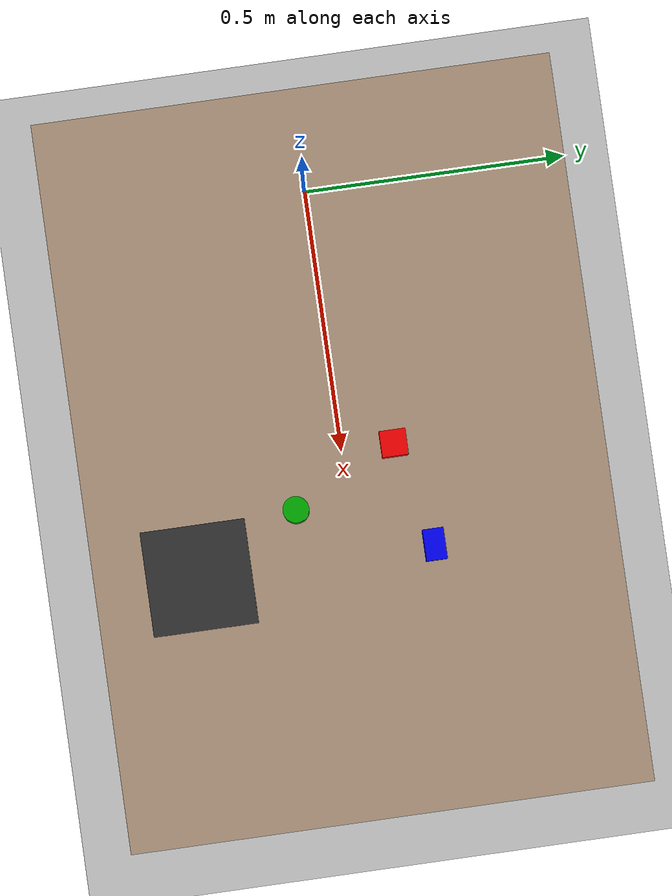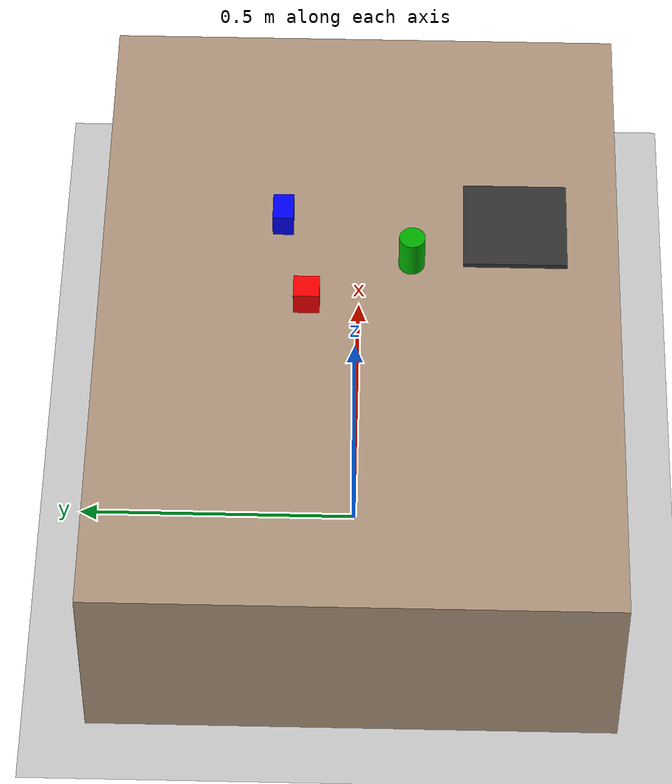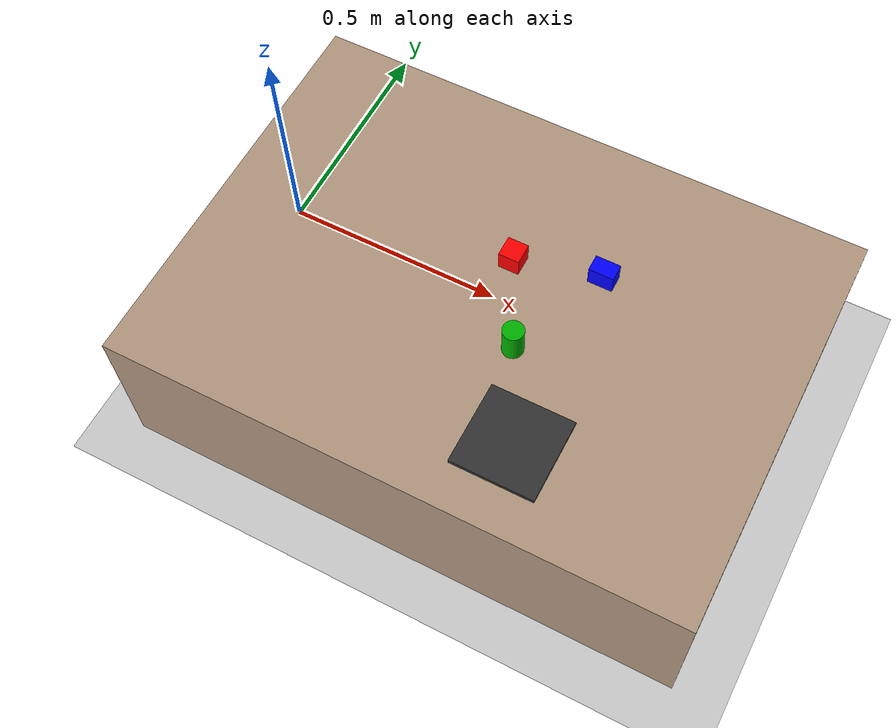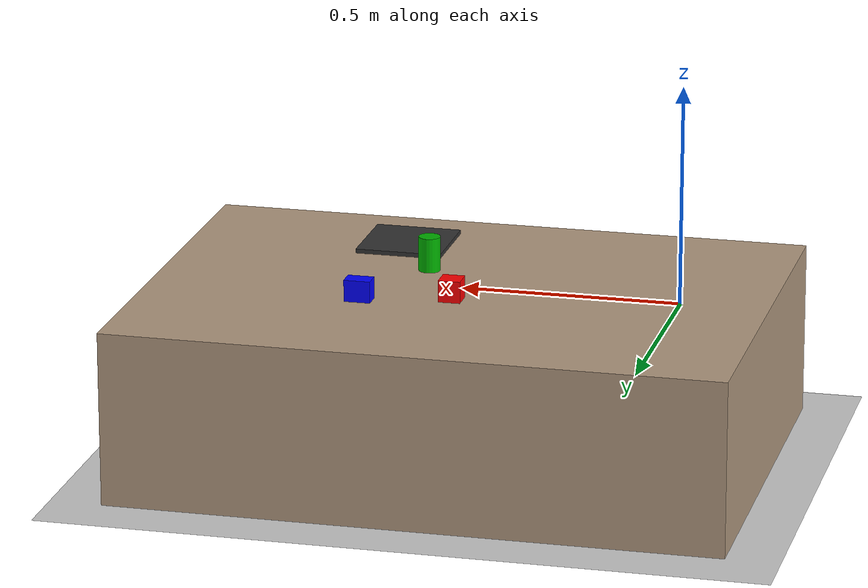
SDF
<?xml version="1.0"?>
<sdf version="1.9">
  <world name="pickplace">
  <scene>
  <ambient>0.6 0.6 0.6 1</ambient>
  <background>0.8 0.8 0.8 1</background>
  <shadows>false</shadows>
  </scene>
    <plugin filename="gz-sim-physics-system" name="gz::sim::systems::Physics"/>
    <plugin filename="gz-sim-sensors-system" name="gz::sim::systems::Sensors">
      <render_engine>ogre2</render_engine>
    </plugin>
    <plugin filename="gz-sim-scene-broadcaster-system"
            name="gz::sim::systems::SceneBroadcaster"/>
    <plugin filename="gz-sim-user-commands-system"
            name="gz::sim::systems::UserCommands"/>

    <light type="directional" name="sun">
    <pose>0 0 5 0 0 0</pose>
    <direction>0 0 -1</direction>
    <diffuse>0.8 0.8 0.8 1</diffuse>
    <specular>0.1 0.1 0.1 1</specular>
    <cast_shadows>false</cast_shadows>
    </light>

    <model name="ground">
      <static>true</static>
      <pose>0 0 -0.4 0 0 0</pose>
      <link name="link">
        <collision name="c"><geometry><plane><normal>0 0 1</normal></plane></geometry></collision>
        <visual name="v"><geometry><plane><normal>0 0 1</normal><size>10 10</size></plane></geometry></visual>
      </link>
    </model>

    <model name="table">
      <static>true</static>
      <pose>0.5 0 -0.2 0 0 0</pose>
      <link name="link">
        <collision name="c"><geometry><box><size>1.4 1.0 0.4</size></box></geometry></collision>
        <visual name="v"><geometry><box><size>1.4 1.0 0.4</size></box></geometry><material><diffuse>0.7 0.6 0.5 1</diffuse><ambient>0.7 0.6 0.5 1</ambient></material></visual>
      </link>
    </model>

    <model name="cube_red">
      <pose>0.5 0.1 0.03 0 0 0</pose>
      <link name="link">
        <inertial><mass>0.05</mass></inertial>
        <collision name="c"><geometry><box><size>0.05 0.05 0.05</size></box></geometry></collision>
        <visual name="v">
          <geometry><box><size>0.05 0.05 0.05</size></box></geometry>
          <material><diffuse>1 0 0 1</diffuse></material>
        </visual>
      </link>
    </model>

    <model name="cylinder_green">
      <pose>0.6 -0.1 0.045 0 0 0</pose>
      <link name="link">
        <inertial><mass>0.05</mass></inertial>
        <collision name="c"><geometry><cylinder><radius>0.025</radius><length>0.08</length></cylinder></geometry></collision>
        <visual name="v">
          <geometry><cylinder><radius>0.025</radius><length>0.08</length></cylinder></geometry>
          <material><diffuse>0 0.7 0 1</diffuse></material>
        </visual>
      </link>
    </model>

    <model name="box_blue">
      <pose>0.7 0.15 0.03 0 0 0</pose>
      <link name="link">
        <inertial><mass>0.05</mass></inertial>
        <collision name="c"><geometry><box><size>0.06 0.04 0.05</size></box></geometry></collision>
        <visual name="v">
          <geometry><box><size>0.06 0.04 0.05</size></box></geometry>
          <material><diffuse>0 0 1 1</diffuse></material>
        </visual>
      </link>
    </model>

    <model name="bin_pad">
      <static>true</static>
      <pose>0.7 -0.3 0.005 0 0 0</pose>
      <link name="link">
        <collision name="c"><geometry><box><size>0.2 0.2 0.01</size></box></geometry></collision>
        <visual name="v">
          <geometry><box><size>0.2 0.2 0.01</size></box></geometry>
          <material><diffuse>0.2 0.2 0.2 1</diffuse><ambient>0.2 0.2 0.2 1</ambient></material>
        </visual>
      </link>
    </model>

    <model name="overhead_camera">
      <static>true</static>
      <pose>0.6 0 0.8 0 1.5708 0</pose>
      <link name="link">
        <sensor name="rgbd" type="rgbd_camera">
          <camera>
            <horizontal_fov>1.05</horizontal_fov>
            <image><width>320</width><height>240</height></image>
            <clip><near>0.1</near><far>3.0</far></clip>
          </camera>
          <always_on>1</always_on>
          <update_rate>10</update_rate>
          <topic>camera</topic>
        </sensor>
      </link>
    </model>
  </world>
</sdf>
